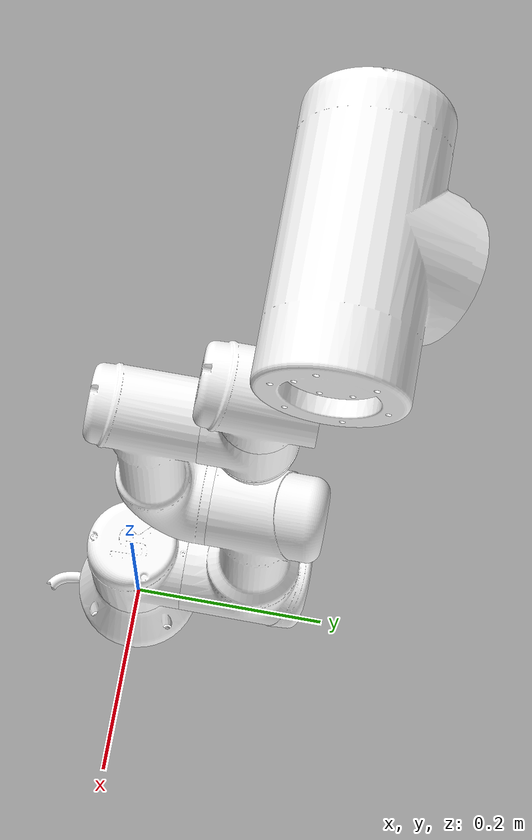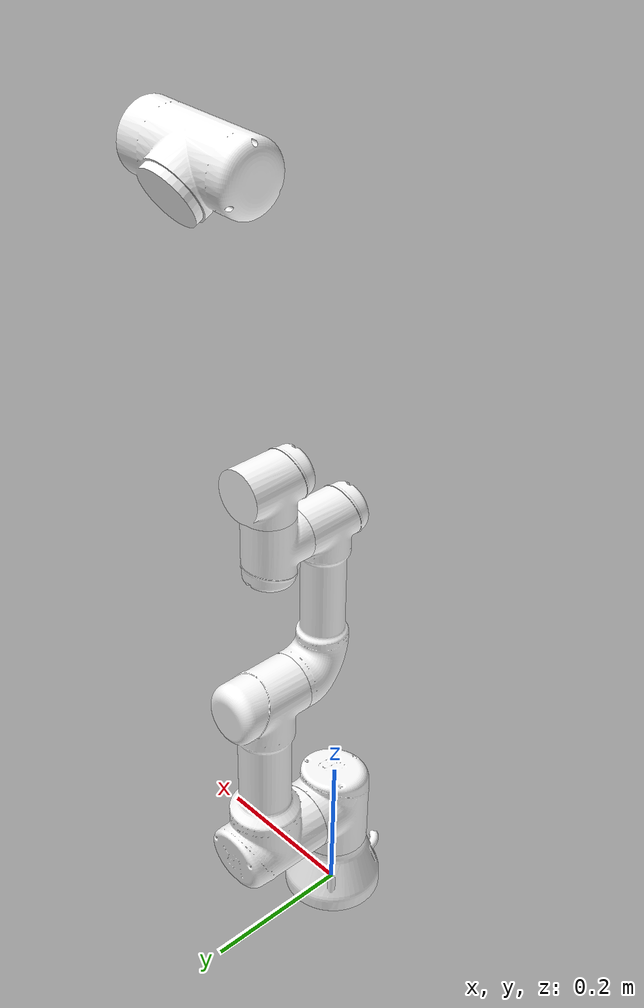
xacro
<?xml version="1.0"?>
<robot name="ur3" xmlns:xacro="http://www.ros.org/wiki/xacro">
    <link name="world"/>
    <joint name="fix_joint" type="fixed">
        <parent link="world"/>
        <child link="base_link"/>
    </joint>

    <link name="base_link">
        <inertial>
            <origin xyz="3.9271E-05 0.04622 0.00080839" rpy="0 0 0"/>
            <mass value="0.61579"/>
            <inertia ixx="0.00079865" ixy="9.7917E-07" ixz="-1.4612E-06" iyy="0.001032" iyz="1.9027E-05"
                     izz="0.00078297"/>
        </inertial>
        <visual>
            <origin xyz="0 0 0" rpy="0 0 0"/>
            <geometry>
                <mesh filename="package://ur3/meshes/base_link.STL"/>
            </geometry>
            <material name="">
                <color rgba="1 1 1 1"/>
            </material>
        </visual>
        <collision>
            <origin xyz="0 0 0" rpy="0 0 0"/>
            <geometry>
                <mesh filename="package://ur3/meshes/base_link.STL"/>
            </geometry>
        </collision>
    </link>
    <link name="link1">
        <inertial>
            <origin xyz="-1.0714E-05 0.055942 0.0073314" rpy="0 0 0"/>
            <mass value="0.75586"/>
            <inertia ixx="0.0012076" ixy="1.5182E-07" ixz="1.1041E-07" iyy="0.00091335" iyz="-0.00010158"
                     izz="0.0011222"/>
        </inertial>
        <visual>
            <origin xyz="0 0 0" rpy="0 0 0"/>
            <geometry>
                <mesh filename="package://ur3/meshes/link1.STL"/>
            </geometry>
            <material name="">
                <color rgba="1 1 1 1"/>
            </material>
        </visual>
        <collision>
            <origin xyz="0 0 0" rpy="0 0 0"/>
            <geometry>
                <mesh filename="package://ur3/meshes/link1.STL"/>
            </geometry>
        </collision>
    </link>
    <joint name="joint1" type="revolute">
        <origin xyz="0 0 0.0844" rpy="1.5708 5.6655E-16 -3.1416"/>
        <parent link="base_link"/>
        <child link="link1"/>
        <axis xyz="0 1 0"/>
        <limit lower="-3.14" upper="3.14" effort="100" velocity="1"/>
    </joint>
    <link name="link2">
        <inertial>
            <origin xyz="-4.188E-06 0.064249 0.1057" rpy="0 0 0"/>
            <mass value="1.8019"/>
            <inertia ixx="0.01936" ixy="8.8945E-08" ixz="-7.4473E-07" iyy="0.018785" iyz="-0.0013523" izz="0.0021134"/>
        </inertial>
        <visual>
            <origin xyz="0 0 0" rpy="0 0 0"/>
            <geometry>
                <mesh filename="package://ur3/meshes/link2.STL"/>
            </geometry>
            <material name="">
                <color rgba="1 1 1 1"/>
            </material>
        </visual>
        <collision>
            <origin xyz="0 0 0" rpy="0 0 0"/>
            <geometry>
                <mesh filename="package://ur3/meshes/link2.STL"/>
            </geometry>
        </collision>
    </link>
    <joint name="joint2" type="revolute">
        <origin xyz="0 0.0675 0.05235" rpy="1.5708 0 -3.1416"/>
        <parent link="link1"/>
        <child link="link2"/>
        <axis xyz="0 -1 0"/>
        <limit lower="-3.14" upper="3.14" effort="100" velocity="1"/>
    </joint>
    <link name="link3">
        <inertial>
            <origin xyz="-0.0051445 -0.1112 7.0153E-08" rpy="0 0 0"/>
            <mass value="0.96225"/>
            <inertia ixx="0.0071078" ixy="0.00058643" ixz="8.7729E-10" iyy="0.00067153" iyz="5.7985E-09"
                     izz="0.0072945"/>
        </inertial>
        <visual>
            <origin xyz="0 0 0" rpy="0 0 0"/>
            <geometry>
                <mesh filename="package://ur3/meshes/link3.STL"/>
            </geometry>
            <material name="">
                <color rgba="1 1 1 1"/>
            </material>
        </visual>
        <collision>
            <origin xyz="0 0 0" rpy="0 0 0"/>
            <geometry>
                <mesh filename="package://ur3/meshes/link3.STL"/>
            </geometry>
        </collision>
    </link>
    <joint name="joint3"
           type="revolute">
        <origin xyz="0 -0.02535 0.24365" rpy="-1.5708 7.4983E-33 -1.5708"/>
        <parent link="link2"/>
        <child link="link3"/>
        <axis xyz="1 0 0"/>
        <limit lower="-3.14" upper="3.14" effort="100" velocity="1"/>
    </joint>
    <link name="link4">
        <inertial>
            <origin xyz="0.0059213 -0.00051763 2.6076E-07" rpy="0 0 0"/>
            <mass value="0.32523"/>
            <inertia ixx="0.00026155" ixy="1.7566E-06" ixz="-1.985E-09" iyy="0.00020549" iyz="-4.0128E-10"
                     izz="0.00029955"/>
        </inertial>
        <visual>
            <origin xyz="0 0 0" rpy="0 0 0"/>
            <geometry>
                <mesh filename="package://ur3/meshes/link4.STL"/>
            </geometry>
            <material name="">
                <color rgba="1 1 1 1"/>
            </material>
        </visual>
        <collision>
            <origin xyz="0 0 0" rpy="0 0 0"/>
            <geometry>
                <mesh filename="package://ur3/meshes/link4.STL"/>
            </geometry>
        </collision>
    </link>
    <joint name="joint4" type="revolute">
        <origin xyz="-0.0834 -0.213 0" rpy="-3.1416 -4.9304E-32 -7.4983E-33"/>
        <parent link="link3"/>
        <child link="link4"/>
        <axis xyz="1 0 0"/>
        <limit lower="-3.14" upper="3.14" effort="100" velocity="1"/>
    </joint>
    <link name="link5">
        <inertial>
            <origin xyz="0.0059213 0.00051762 -2.3715E-07" rpy="0 0 0"/>
            <mass value="0.32523"/>
            <inertia ixx="0.00026155" ixy="-1.7566E-06" ixz="1.9216E-09" iyy="0.00020549" iyz="-2.2402E-10"
                     izz="0.00029955"/>
        </inertial>
        <visual>
            <origin xyz="0 0 0" rpy="0 0 0"/>
            <geometry>
                <mesh filename="package://ur3/meshes/link5.STL"/>
            </geometry>
            <material name="">
                <color rgba="1 1 1 1"/>
            </material>
        </visual>
        <collision>
            <origin xyz="0 0 0" rpy="0 0 0"/>
            <geometry>
                <mesh filename="package://ur3/meshes/link5.STL"/>
            </geometry>
        </collision>
    </link>
    <joint name="joint5" type="revolute">
        <origin xyz="0 0.0834 0" rpy="0 -3.8286E-16 -1.5708"/>
        <parent link="link4"/>
        <child link="link5"/>
        <axis xyz="-1 0 0"/>
        <limit lower="-3.14" upper="3.14" effort="100" velocity="1"/>
    </joint>
    <link name="link6">
        <inertial>
            <origin xyz="-3.468E-11 0.00010331 -0.021073" rpy="0 0 0"/>
            <mass value="0.11536"/>
            <inertia ixx="4.3204E-05" ixy="5.7806E-13" ixz="-1.2E-12" iyy="4.3416E-05" iyz="1.0813E-07"
                     izz="5.9067E-05"/>
        </inertial>
        <visual>
            <origin xyz="0 0 0" rpy="0 0 0"/>
            <geometry>
                <mesh filename="package://ur3/meshes/link6.STL"/>
            </geometry>
            <material name="">
                <color rgba="1 1 1 1"/>
            </material>
        </visual>
        <collision>
            <origin xyz="0 0 0" rpy="0 0 0"/>
            <geometry>
                <mesh filename="package://ur3/meshes/link6.STL"/>
            </geometry>
        </collision>
    </link>
    <joint name="joint6" type="continuous">
        <origin xyz="0 -0.0409 0" rpy="1.5708 -1.5708 0"/>
        <parent link="link5"/>
        <child link="link6"/>
        <axis xyz="0 0 1"/>
        <limit effort="100" velocity="1"/>
    </joint>

    <!-- Transmissions for ROS Control -->
    <xacro:macro name="transmission_block" params="joint_name">
        <transmission name="tran1">
            <type>transmission_interface/SimpleTransmission</type>
            <joint name="${joint_name}">
                <hardwareInterface>hardware_interface/PositionJointInterface</hardwareInterface>
            </joint>
            <actuator name="motor1">
                <hardwareInterface>hardware_interface/PositionJointInterface</hardwareInterface>
                <mechanicalReduction>1</mechanicalReduction>
            </actuator>
        </transmission>
    </xacro:macro>

    <xacro:transmission_block joint_name="joint1"/>
    <xacro:transmission_block joint_name="joint2"/>
    <xacro:transmission_block joint_name="joint3"/>
    <xacro:transmission_block joint_name="joint4"/>
    <xacro:transmission_block joint_name="joint5"/>
    <xacro:transmission_block joint_name="joint6"/>

    <!-- ros_control plugin -->
    <gazebo>
        <plugin name="gazebo_ros_control" filename="libgazebo_ros_control.so">
            <robotNamespace>/ur3</robotNamespace>
            <robotSimType>gazebo_ros_control/DefaultRobotHWSim</robotSimType>
            <legacyModeNS>true</legacyModeNS>
        </plugin>
    </gazebo>

</robot>
